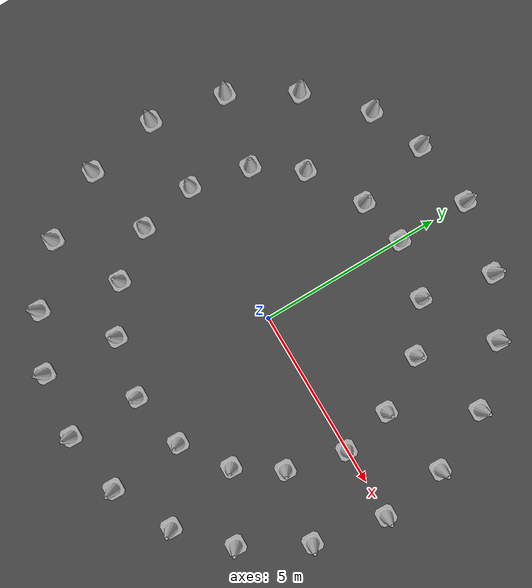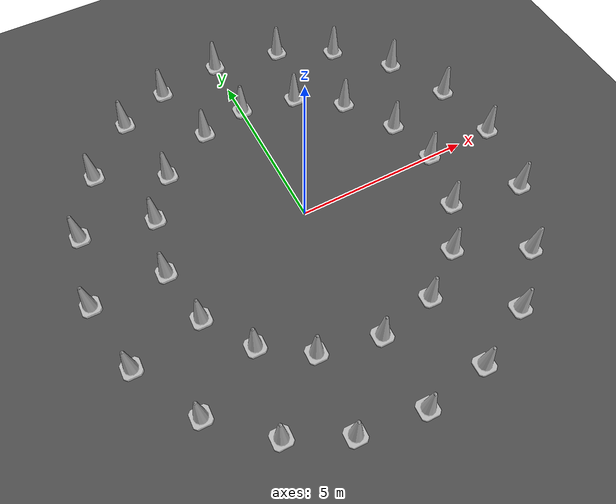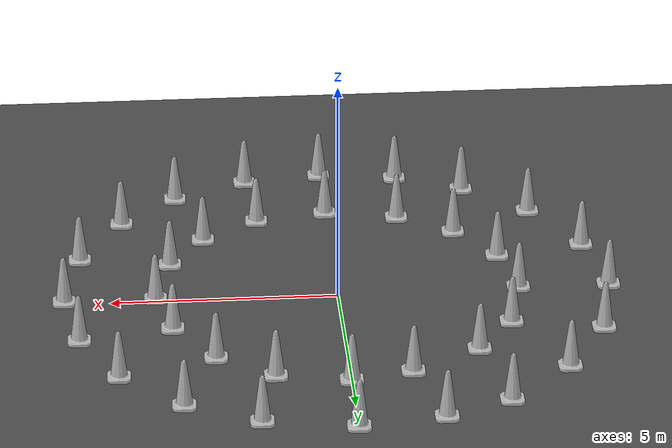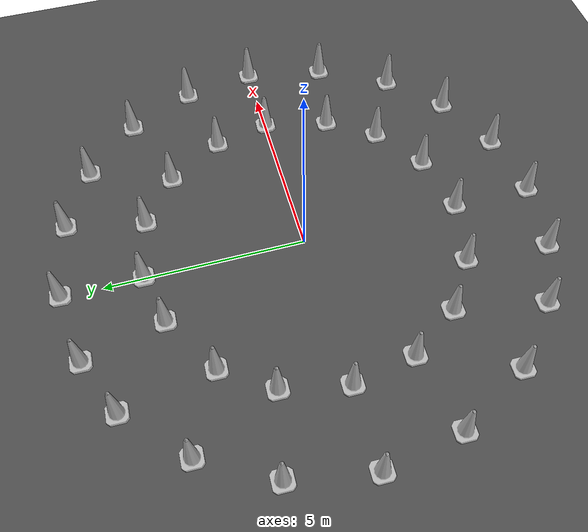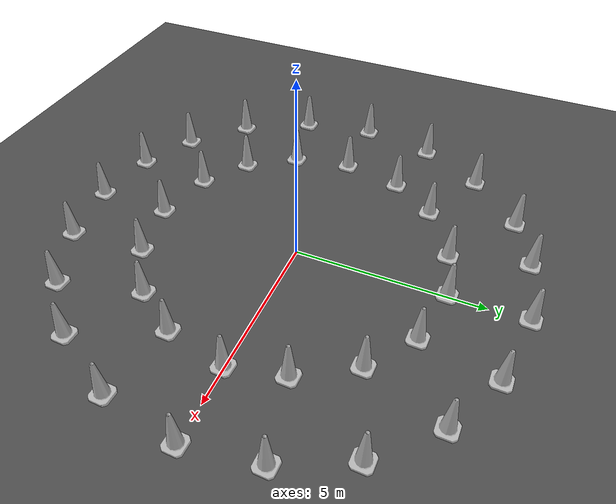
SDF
<sdf version="1.7">
 <world name="default">
  <light name="sun" type="directional">
   <pose>0 0 10 0 -0 0</pose>
   <diffuse>0.8 0.8 0.8 1</diffuse>
   <specular>0.2 0.2 0.2 1</specular>
   <attenuation>
    <range>1000</range>
    <constant>0.9</constant>
    <linear>0.01</linear>
    <quadratic>0.001</quadratic>
   </attenuation>
   <direction>-0.5 0.1 -0.9</direction>
   <spot><inner_angle>0</inner_angle><outer_angle>0</outer_angle><falloff>0</falloff></spot>
  </light>
  <model name="ground_plane">
   <static>1</static>
   <link name="link">
    <collision name="collision">
     <geometry><plane><normal>0 0 1</normal><size>100 100</size></plane></geometry>
     <surface><friction><ode><mu>100</mu><mu2>50</mu2></ode></friction></surface>
    </collision>
    <visual name="visual">
     <cast_shadows>0</cast_shadows>
     <geometry><plane><normal>0 0 1</normal><size>100 100</size></plane></geometry>
     <material>
      <script><uri>file://media/materials/scripts/gazebo.material</uri><name>Gazebo/Grey</name></script>
     </material>
    </visual>
    <velocity_decay><linear>0</linear><angular>0</angular></velocity_decay>
   </link>
  </model>
  <physics type="ode">
   <max_step_size>0.01</max_step_size>
   <real_time_factor>1</real_time_factor>
   <real_time_update_rate>100</real_time_update_rate>
  </physics>
  <scene><ambient>0.4 0.4 0.4 1</ambient><background>0.7 0.7 0.7 1</background><shadows>1</shadows></scene>
  <model name="Construction Cone">
   <link name="link">
    <collision name="collision">
     <geometry>
      <mesh><scale>10 10 10</scale><uri>model://construction_cone/meshes/construction_cone.dae</uri></mesh>
     </geometry>
    </collision>
    <visual name="visual">
     <geometry>
      <mesh><scale>10 10 10</scale><uri>model://construction_cone/meshes/construction_cone.dae</uri></mesh>
     </geometry>
    </visual>
    <velocity_decay><linear>0</linear><angular>0</angular></velocity_decay>
    <inertial>
     <inertia><ixx>1</ixx><ixy>0</ixy><ixz>0</ixz><iyy>1</iyy><iyz>0</iyz><izz>1</izz></inertia>
     <mass>1</mass>
    </inertial>
   </link>
   <pose>0.011489 -6.00634 0.05 0 -0 -0.029351</pose>
   <static>0</static>
  </model>
  <model name="Construction Cone_0">
   <link name="link">
    <collision name="collision">
     <geometry>
      <mesh><scale>10 10 10</scale><uri>model://construction_cone/meshes/construction_cone.dae</uri></mesh>
     </geometry>
    </collision>
    <visual name="visual">
     <geometry>
      <mesh><scale>10 10 10</scale><uri>model://construction_cone/meshes/construction_cone.dae</uri></mesh>
     </geometry>
    </visual>
    <velocity_decay><linear>0</linear><angular>0</angular></velocity_decay>
    <inertial>
     <inertia><ixx>1</ixx><ixy>0</ixy><ixz>0</ixz><iyy>1</iyy><iyz>0</iyz><izz>1</izz></inertia>
     <mass>1</mass>
    </inertial>
   </link>
   <pose>0.010199 5.9935 0.05 0 -0 -0.049854</pose>
   <static>0</static>
  </model>
  <model name="Construction Cone_1">
   <link name="link">
    <collision name="collision">
     <geometry>
      <mesh><scale>10 10 10</scale><uri>model://construction_cone/meshes/construction_cone.dae</uri></mesh>
     </geometry>
    </collision>
    <visual name="visual">
     <geometry>
      <mesh><scale>10 10 10</scale><uri>model://construction_cone/meshes/construction_cone.dae</uri></mesh>
     </geometry>
    </visual>
    <velocity_decay><linear>0</linear><angular>0</angular></velocity_decay>
    <inertial>
     <inertia><ixx>1</ixx><ixy>0</ixy><ixz>0</ixz><iyy>1</iyy><iyz>0</iyz><izz>1</izz></inertia>
     <mass>1</mass>
    </inertial>
   </link>
   <pose>0.011489 -4.00634 0.05 0 -0 -0.029351</pose>
   <static>0</static>
  </model>
  <gravity>0 0 -9.8</gravity>
  <magnetic_field>6e-06 2.3e-05 -4.2e-05</magnetic_field>
  <atmosphere type="adiabatic"/>
  <spherical_coordinates>
   <surface_model>EARTH_WGS84</surface_model>
   <latitude_deg>0</latitude_deg>
   <longitude_deg>0</longitude_deg>
   <elevation>0</elevation>
   <heading_deg>0</heading_deg>
  </spherical_coordinates>
  <model name="Construction Cone_0_clone">
   <link name="link">
    <collision name="collision">
     <geometry>
      <mesh><scale>10 10 10</scale><uri>model://construction_cone/meshes/construction_cone.dae</uri></mesh>
     </geometry>
    </collision>
    <visual name="visual">
     <geometry>
      <mesh><scale>10 10 10</scale><uri>model://construction_cone/meshes/construction_cone.dae</uri></mesh>
     </geometry>
    </visual>
    <velocity_decay><linear>0</linear><angular>0</angular></velocity_decay>
    <inertial>
     <inertia><ixx>1</ixx><ixy>0</ixy><ixz>0</ixz><iyy>1</iyy><iyz>0</iyz><izz>1</izz></inertia>
     <mass>1</mass>
    </inertial>
   </link>
   <pose>0.009254 4.00336 0.05 0 -0 -0.022775</pose>
   <static>0</static>
  </model>
  <model name="Construction Cone_0_clone_0">
   <link name="link">
    <collision name="collision">
     <geometry>
      <mesh><scale>10 10 10</scale><uri>model://construction_cone/meshes/construction_cone.dae</uri></mesh>
     </geometry>
    </collision>
    <visual name="visual">
     <geometry>
      <mesh><scale>10 10 10</scale><uri>model://construction_cone/meshes/construction_cone.dae</uri></mesh>
     </geometry>
    </visual>
    <velocity_decay><linear>0</linear><angular>0</angular></velocity_decay>
    <inertial>
     <inertia><ixx>1</ixx><ixy>0</ixy><ixz>0</ixz><iyy>1</iyy><iyz>0</iyz><izz>1</izz></inertia>
     <mass>1</mass>
    </inertial>
   </link>
   <pose>4.0102 -0.006499 0.05 0 -0 -0.049854</pose>
   <static>0</static>
  </model>
  <model name="Construction Cone_0_clone_1">
   <link name="link">
    <collision name="collision">
     <geometry>
      <mesh><scale>10 10 10</scale><uri>model://construction_cone/meshes/construction_cone.dae</uri></mesh>
     </geometry>
    </collision>
    <visual name="visual">
     <geometry>
      <mesh><scale>10 10 10</scale><uri>model://construction_cone/meshes/construction_cone.dae</uri></mesh>
     </geometry>
    </visual>
    <velocity_decay><linear>0</linear><angular>0</angular></velocity_decay>
    <inertial>
     <inertia><ixx>1</ixx><ixy>0</ixy><ixz>0</ixz><iyy>1</iyy><iyz>0</iyz><izz>1</izz></inertia>
     <mass>1</mass>
    </inertial>
   </link>
   <pose>6.00925 0.003362 0.05 0 -0 -0.022775</pose>
   <static>0</static>
  </model>
  <model name="Construction Cone_0_clone_2">
   <link name="link">
    <collision name="collision">
     <geometry>
      <mesh><scale>10 10 10</scale><uri>model://construction_cone/meshes/construction_cone.dae</uri></mesh>
     </geometry>
    </collision>
    <visual name="visual">
     <geometry>
      <mesh><scale>10 10 10</scale><uri>model://construction_cone/meshes/construction_cone.dae</uri></mesh>
     </geometry>
    </visual>
    <velocity_decay><linear>0</linear><angular>0</angular></velocity_decay>
    <inertial>
     <inertia><ixx>1</ixx><ixy>0</ixy><ixz>0</ixz><iyy>1</iyy><iyz>0</iyz><izz>1</izz></inertia>
     <mass>1</mass>
    </inertial>
   </link>
   <pose>-3.99075 0.003362 0.05 0 -0 -0.022775</pose>
   <static>0</static>
  </model>
  <model name="Construction Cone_0_clone_3">
   <link name="link">
    <collision name="collision">
     <geometry>
      <mesh><scale>10 10 10</scale><uri>model://construction_cone/meshes/construction_cone.dae</uri></mesh>
     </geometry>
    </collision>
    <visual name="visual">
     <geometry>
      <mesh><scale>10 10 10</scale><uri>model://construction_cone/meshes/construction_cone.dae</uri></mesh>
     </geometry>
    </visual>
    <velocity_decay><linear>0</linear><angular>0</angular></velocity_decay>
    <inertial>
     <inertia><ixx>1</ixx><ixy>0</ixy><ixz>0</ixz><iyy>1</iyy><iyz>0</iyz><izz>1</izz></inertia>
     <mass>1</mass>
    </inertial>
   </link>
   <pose>-5.99075 0.003362 0.05 0 -0 -0.022775</pose>
   <static>0</static>
  </model>
  <model name="Construction Cone_0_clone_clone">
   <link name="link">
    <collision name="collision">
     <geometry>
      <mesh><scale>10 10 10</scale><uri>model://construction_cone/meshes/construction_cone.dae</uri></mesh>
     </geometry>
    </collision>
    <visual name="visual">
     <geometry>
      <mesh><scale>10 10 10</scale><uri>model://construction_cone/meshes/construction_cone.dae</uri></mesh>
     </geometry>
    </visual>
    <velocity_decay><linear>0</linear><angular>0</angular></velocity_decay>
    <inertial>
     <inertia><ixx>1</ixx><ixy>0</ixy><ixz>0</ixz><iyy>1</iyy><iyz>0</iyz><izz>1</izz></inertia>
     <mass>1</mass>
    </inertial>
   </link>
   <pose>-1.32086 3.71081 0.04996 -3e-06 0.000177 -0.029761</pose>
   <static>0</static>
  </model>
  <model name="Construction Cone_0_clone_0_clone">
   <link name="link">
    <collision name="collision">
     <geometry>
      <mesh><scale>10 10 10</scale><uri>model://construction_cone/meshes/construction_cone.dae</uri></mesh>
     </geometry>
    </collision>
    <visual name="visual">
     <geometry>
      <mesh><scale>10 10 10</scale><uri>model://construction_cone/meshes/construction_cone.dae</uri></mesh>
     </geometry>
    </visual>
    <velocity_decay><linear>0</linear><angular>0</angular></velocity_decay>
    <inertial>
     <inertia><ixx>1</ixx><ixy>0</ixy><ixz>0</ixz><iyy>1</iyy><iyz>0</iyz><izz>1</izz></inertia>
     <mass>1</mass>
    </inertial>
   </link>
   <pose>1.59543 -3.69529 0.04996 -3e-06 0.000177 -0.029752</pose>
   <static>0</static>
  </model>
  <model name="Construction Cone_0_clone_0_clone_0">
   <link name="link">
    <collision name="collision">
     <geometry>
      <mesh><scale>10 10 10</scale><uri>model://construction_cone/meshes/construction_cone.dae</uri></mesh>
     </geometry>
    </collision>
    <visual name="visual">
     <geometry>
      <mesh><scale>10 10 10</scale><uri>model://construction_cone/meshes/construction_cone.dae</uri></mesh>
     </geometry>
    </visual>
    <velocity_decay><linear>0</linear><angular>0</angular></velocity_decay>
    <inertial>
     <inertia><ixx>1</ixx><ixy>0</ixy><ixz>0</ixz><iyy>1</iyy><iyz>0</iyz><izz>1</izz></inertia>
     <mass>1</mass>
    </inertial>
   </link>
   <pose>2.85107 -2.82602 0.04996 -3e-06 0.000177 -0.029752</pose>
   <static>0</static>
  </model>
  <model name="Construction Cone_0_clone_0_clone_1">
   <link name="link">
    <collision name="collision">
     <geometry>
      <mesh><scale>10 10 10</scale><uri>model://construction_cone/meshes/construction_cone.dae</uri></mesh>
     </geometry>
    </collision>
    <visual name="visual">
     <geometry>
      <mesh><scale>10 10 10</scale><uri>model://construction_cone/meshes/construction_cone.dae</uri></mesh>
     </geometry>
    </visual>
    <velocity_decay><linear>0</linear><angular>0</angular></velocity_decay>
    <inertial>
     <inertia><ixx>1</ixx><ixy>0</ixy><ixz>0</ixz><iyy>1</iyy><iyz>0</iyz><izz>1</izz></inertia>
     <mass>1</mass>
    </inertial>
   </link>
   <pose>3.63603 -1.6452 0.04996 -3e-06 0.000177 -0.029752</pose>
   <static>0</static>
  </model>
  <model name="Construction Cone_0_clone_0_clone_clone">
   <link name="link">
    <collision name="collision">
     <geometry>
      <mesh><scale>10 10 10</scale><uri>model://construction_cone/meshes/construction_cone.dae</uri></mesh>
     </geometry>
    </collision>
    <visual name="visual">
     <geometry>
      <mesh><scale>10 10 10</scale><uri>model://construction_cone/meshes/construction_cone.dae</uri></mesh>
     </geometry>
    </visual>
    <velocity_decay><linear>0</linear><angular>0</angular></velocity_decay>
    <inertial>
     <inertia><ixx>1</ixx><ixy>0</ixy><ixz>0</ixz><iyy>1</iyy><iyz>0</iyz><izz>1</izz></inertia>
     <mass>1</mass>
    </inertial>
   </link>
   <pose>-1.61123 -3.65752 0.04996 -3e-06 0.000177 -0.029752</pose>
   <static>0</static>
  </model>
  <model name="Construction Cone_0_clone_0_clone_clone_0">
   <link name="link">
    <collision name="collision">
     <geometry>
      <mesh><scale>10 10 10</scale><uri>model://construction_cone/meshes/construction_cone.dae</uri></mesh>
     </geometry>
    </collision>
    <visual name="visual">
     <geometry>
      <mesh><scale>10 10 10</scale><uri>model://construction_cone/meshes/construction_cone.dae</uri></mesh>
     </geometry>
    </visual>
    <velocity_decay><linear>0</linear><angular>0</angular></velocity_decay>
    <inertial>
     <inertia><ixx>1</ixx><ixy>0</ixy><ixz>0</ixz><iyy>1</iyy><iyz>0</iyz><izz>1</izz></inertia>
     <mass>1</mass>
    </inertial>
   </link>
   <pose>-2.8285 -2.83035 0.04996 -3e-06 0.000177 -0.029752</pose>
   <static>0</static>
  </model>
  <model name="Construction Cone_0_clone_0_clone_clone_1">
   <link name="link">
    <collision name="collision">
     <geometry>
      <mesh><scale>10 10 10</scale><uri>model://construction_cone/meshes/construction_cone.dae</uri></mesh>
     </geometry>
    </collision>
    <visual name="visual">
     <geometry>
      <mesh><scale>10 10 10</scale><uri>model://construction_cone/meshes/construction_cone.dae</uri></mesh>
     </geometry>
    </visual>
    <velocity_decay><linear>0</linear><angular>0</angular></velocity_decay>
    <inertial>
     <inertia><ixx>1</ixx><ixy>0</ixy><ixz>0</ixz><iyy>1</iyy><iyz>0</iyz><izz>1</izz></inertia>
     <mass>1</mass>
    </inertial>
   </link>
   <pose>-3.69287 -1.56973 0.04996 -3e-06 0.000177 -0.029752</pose>
   <static>0</static>
  </model>
  <model name="Construction Cone_0_clone_0_clone_clone_2">
   <link name="link">
    <collision name="collision">
     <geometry>
      <mesh><scale>10 10 10</scale><uri>model://construction_cone/meshes/construction_cone.dae</uri></mesh>
     </geometry>
    </collision>
    <visual name="visual">
     <geometry>
      <mesh><scale>10 10 10</scale><uri>model://construction_cone/meshes/construction_cone.dae</uri></mesh>
     </geometry>
    </visual>
    <velocity_decay><linear>0</linear><angular>0</angular></velocity_decay>
    <inertial>
     <inertia><ixx>1</ixx><ixy>0</ixy><ixz>0</ixz><iyy>1</iyy><iyz>0</iyz><izz>1</izz></inertia>
     <mass>1</mass>
    </inertial>
   </link>
   <pose>3.68004 1.41114 0.04996 -3e-06 0.000177 -0.029752</pose>
   <static>0</static>
  </model>
  <model name="Construction Cone_0_clone_0_clone_clone_3">
   <link name="link">
    <collision name="collision">
     <geometry>
      <mesh><scale>10 10 10</scale><uri>model://construction_cone/meshes/construction_cone.dae</uri></mesh>
     </geometry>
    </collision>
    <visual name="visual">
     <geometry>
      <mesh><scale>10 10 10</scale><uri>model://construction_cone/meshes/construction_cone.dae</uri></mesh>
     </geometry>
    </visual>
    <velocity_decay><linear>0</linear><angular>0</angular></velocity_decay>
    <inertial>
     <inertia><ixx>1</ixx><ixy>0</ixy><ixz>0</ixz><iyy>1</iyy><iyz>0</iyz><izz>1</izz></inertia>
     <mass>1</mass>
    </inertial>
   </link>
   <pose>2.81108 2.81547 0.04996 -3e-06 0.000177 -0.029752</pose>
   <static>0</static>
  </model>
  <model name="Construction Cone_0_clone_0_clone_clone_4">
   <link name="link">
    <collision name="collision">
     <geometry>
      <mesh><scale>10 10 10</scale><uri>model://construction_cone/meshes/construction_cone.dae</uri></mesh>
     </geometry>
    </collision>
    <visual name="visual">
     <geometry>
      <mesh><scale>10 10 10</scale><uri>model://construction_cone/meshes/construction_cone.dae</uri></mesh>
     </geometry>
    </visual>
    <velocity_decay><linear>0</linear><angular>0</angular></velocity_decay>
    <inertial>
     <inertia><ixx>1</ixx><ixy>0</ixy><ixz>0</ixz><iyy>1</iyy><iyz>0</iyz><izz>1</izz></inertia>
     <mass>1</mass>
    </inertial>
   </link>
   <pose>1.58977 3.70091 0.04996 -3e-06 0.000177 -0.029752</pose>
   <static>0</static>
  </model>
  <model name="Construction Cone_0_clone_0_clone_clone_5">
   <link name="link">
    <collision name="collision">
     <geometry>
      <mesh><scale>10 10 10</scale><uri>model://construction_cone/meshes/construction_cone.dae</uri></mesh>
     </geometry>
    </collision>
    <visual name="visual">
     <geometry>
      <mesh><scale>10 10 10</scale><uri>model://construction_cone/meshes/construction_cone.dae</uri></mesh>
     </geometry>
    </visual>
    <velocity_decay><linear>0</linear><angular>0</angular></velocity_decay>
    <inertial>
     <inertia><ixx>1</ixx><ixy>0</ixy><ixz>0</ixz><iyy>1</iyy><iyz>0</iyz><izz>1</izz></inertia>
     <mass>1</mass>
    </inertial>
   </link>
   <pose>-2.82441 2.82035 0.04996 -3e-06 0.000177 -0.029752</pose>
   <static>0</static>
  </model>
  <model name="Construction Cone_0_clone_0_clone_clone_6">
   <link name="link">
    <collision name="collision">
     <geometry>
      <mesh><scale>10 10 10</scale><uri>model://construction_cone/meshes/construction_cone.dae</uri></mesh>
     </geometry>
    </collision>
    <visual name="visual">
     <geometry>
      <mesh><scale>10 10 10</scale><uri>model://construction_cone/meshes/construction_cone.dae</uri></mesh>
     </geometry>
    </visual>
    <velocity_decay><linear>0</linear><angular>0</angular></velocity_decay>
    <inertial>
     <inertia><ixx>1</ixx><ixy>0</ixy><ixz>0</ixz><iyy>1</iyy><iyz>0</iyz><izz>1</izz></inertia>
     <mass>1</mass>
    </inertial>
   </link>
   <pose>-3.65071 1.62696 0.04996 -3e-06 0.000177 -0.029752</pose>
   <static>0</static>
  </model>
  <model name="Construction Cone_clone">
   <link name="link">
    <collision name="collision">
     <geometry>
      <mesh><scale>10 10 10</scale><uri>model://construction_cone/meshes/construction_cone.dae</uri></mesh>
     </geometry>
    </collision>
    <visual name="visual">
     <geometry>
      <mesh><scale>10 10 10</scale><uri>model://construction_cone/meshes/construction_cone.dae</uri></mesh>
     </geometry>
    </visual>
    <velocity_decay><linear>0</linear><angular>0</angular></velocity_decay>
    <inertial>
     <inertia><ixx>1</ixx><ixy>0</ixy><ixz>0</ixz><iyy>1</iyy><iyz>0</iyz><izz>1</izz></inertia>
     <mass>1</mass>
    </inertial>
   </link>
   <pose>1.76288 -5.75564 0.050003 1.3e-05 1e-06 -0.028992</pose>
   <static>0</static>
  </model>
  <model name="Construction Cone_clone_0">
   <link name="link">
    <collision name="collision">
     <geometry>
      <mesh><scale>10 10 10</scale><uri>model://construction_cone/meshes/construction_cone.dae</uri></mesh>
     </geometry>
    </collision>
    <visual name="visual">
     <geometry>
      <mesh><scale>10 10 10</scale><uri>model://construction_cone/meshes/construction_cone.dae</uri></mesh>
     </geometry>
    </visual>
    <velocity_decay><linear>0</linear><angular>0</angular></velocity_decay>
    <inertial>
     <inertia><ixx>1</ixx><ixy>0</ixy><ixz>0</ixz><iyy>1</iyy><iyz>0</iyz><izz>1</izz></inertia>
     <mass>1</mass>
    </inertial>
   </link>
   <pose>3.40811 -4.98165 0.050003 1.3e-05 1e-06 -0.028992</pose>
   <static>0</static>
  </model>
  <model name="Construction Cone_clone_1">
   <link name="link">
    <collision name="collision">
     <geometry>
      <mesh><scale>10 10 10</scale><uri>model://construction_cone/meshes/construction_cone.dae</uri></mesh>
     </geometry>
    </collision>
    <visual name="visual">
     <geometry>
      <mesh><scale>10 10 10</scale><uri>model://construction_cone/meshes/construction_cone.dae</uri></mesh>
     </geometry>
    </visual>
    <velocity_decay><linear>0</linear><angular>0</angular></velocity_decay>
    <inertial>
     <inertia><ixx>1</ixx><ixy>0</ixy><ixz>0</ixz><iyy>1</iyy><iyz>0</iyz><izz>1</izz></inertia>
     <mass>1</mass>
    </inertial>
   </link>
   <pose>4.66934 -3.76976 0.050003 1.3e-05 1e-06 -0.028992</pose>
   <static>0</static>
  </model>
  <model name="Construction Cone_clone_2">
   <link name="link">
    <collision name="collision">
     <geometry>
      <mesh><scale>10 10 10</scale><uri>model://construction_cone/meshes/construction_cone.dae</uri></mesh>
     </geometry>
    </collision>
    <visual name="visual">
     <geometry>
      <mesh><scale>10 10 10</scale><uri>model://construction_cone/meshes/construction_cone.dae</uri></mesh>
     </geometry>
    </visual>
    <velocity_decay><linear>0</linear><angular>0</angular></velocity_decay>
    <inertial>
     <inertia><ixx>1</ixx><ixy>0</ixy><ixz>0</ixz><iyy>1</iyy><iyz>0</iyz><izz>1</izz></inertia>
     <mass>1</mass>
    </inertial>
   </link>
   <pose>5.63845 -2.00887 0.050003 1.3e-05 1e-06 -0.028992</pose>
   <static>0</static>
  </model>
  <model name="Construction Cone_clone_3">
   <link name="link">
    <collision name="collision">
     <geometry>
      <mesh><scale>10 10 10</scale><uri>model://construction_cone/meshes/construction_cone.dae</uri></mesh>
     </geometry>
    </collision>
    <visual name="visual">
     <geometry>
      <mesh><scale>10 10 10</scale><uri>model://construction_cone/meshes/construction_cone.dae</uri></mesh>
     </geometry>
    </visual>
    <velocity_decay><linear>0</linear><angular>0</angular></velocity_decay>
    <inertial>
     <inertia><ixx>1</ixx><ixy>0</ixy><ixz>0</ixz><iyy>1</iyy><iyz>0</iyz><izz>1</izz></inertia>
     <mass>1</mass>
    </inertial>
   </link>
   <pose>-1.74607 -5.75561 0.050003 1.3e-05 1e-06 -0.028992</pose>
   <static>0</static>
  </model>
  <model name="Construction Cone_clone_4">
   <link name="link">
    <collision name="collision">
     <geometry>
      <mesh><scale>10 10 10</scale><uri>model://construction_cone/meshes/construction_cone.dae</uri></mesh>
     </geometry>
    </collision>
    <visual name="visual">
     <geometry>
      <mesh><scale>10 10 10</scale><uri>model://construction_cone/meshes/construction_cone.dae</uri></mesh>
     </geometry>
    </visual>
    <velocity_decay><linear>0</linear><angular>0</angular></velocity_decay>
    <inertial>
     <inertia><ixx>1</ixx><ixy>0</ixy><ixz>0</ixz><iyy>1</iyy><iyz>0</iyz><izz>1</izz></inertia>
     <mass>1</mass>
    </inertial>
   </link>
   <pose>-3.24109 -5.0394 0.050003 1.3e-05 1e-06 -0.028992</pose>
   <static>0</static>
  </model>
  <model name="Construction Cone_clone_5">
   <link name="link">
    <collision name="collision">
     <geometry>
      <mesh><scale>10 10 10</scale><uri>model://construction_cone/meshes/construction_cone.dae</uri></mesh>
     </geometry>
    </collision>
    <visual name="visual">
     <geometry>
      <mesh><scale>10 10 10</scale><uri>model://construction_cone/meshes/construction_cone.dae</uri></mesh>
     </geometry>
    </visual>
    <velocity_decay><linear>0</linear><angular>0</angular></velocity_decay>
    <inertial>
     <inertia><ixx>1</ixx><ixy>0</ixy><ixz>0</ixz><iyy>1</iyy><iyz>0</iyz><izz>1</izz></inertia>
     <mass>1</mass>
    </inertial>
   </link>
   <pose>-4.64211 -3.7752 0.050003 1.3e-05 1e-06 -0.028992</pose>
   <static>0</static>
  </model>
  <model name="Construction Cone_clone_6">
   <link name="link">
    <collision name="collision">
     <geometry>
      <mesh><scale>10 10 10</scale><uri>model://construction_cone/meshes/construction_cone.dae</uri></mesh>
     </geometry>
    </collision>
    <visual name="visual">
     <geometry>
      <mesh><scale>10 10 10</scale><uri>model://construction_cone/meshes/construction_cone.dae</uri></mesh>
     </geometry>
    </visual>
    <velocity_decay><linear>0</linear><angular>0</angular></velocity_decay>
    <inertial>
     <inertia><ixx>1</ixx><ixy>0</ixy><ixz>0</ixz><iyy>1</iyy><iyz>0</iyz><izz>1</izz></inertia>
     <mass>1</mass>
    </inertial>
   </link>
   <pose>-5.64257 -1.96865 0.050003 1.3e-05 1e-06 -0.028992</pose>
   <static>0</static>
  </model>
  <model name="Construction Cone_0_clone_3_clone">
   <link name="link">
    <collision name="collision">
     <geometry>
      <mesh><scale>10 10 10</scale><uri>model://construction_cone/meshes/construction_cone.dae</uri></mesh>
     </geometry>
    </collision>
    <visual name="visual">
     <geometry>
      <mesh><scale>10 10 10</scale><uri>model://construction_cone/meshes/construction_cone.dae</uri></mesh>
     </geometry>
    </visual>
    <velocity_decay><linear>0</linear><angular>0</angular></velocity_decay>
    <inertial>
     <inertia><ixx>1</ixx><ixy>0</ixy><ixz>0</ixz><iyy>1</iyy><iyz>0</iyz><izz>1</izz></inertia>
     <mass>1</mass>
    </inertial>
   </link>
   <pose>-5.61788 2.02748 0.05 0 -0 -0.022775</pose>
   <static>0</static>
  </model>
  <model name="Construction Cone_0_clone_3_clone_0">
   <link name="link">
    <collision name="collision">
     <geometry>
      <mesh><scale>10 10 10</scale><uri>model://construction_cone/meshes/construction_cone.dae</uri></mesh>
     </geometry>
    </collision>
    <visual name="visual">
     <geometry>
      <mesh><scale>10 10 10</scale><uri>model://construction_cone/meshes/construction_cone.dae</uri></mesh>
     </geometry>
    </visual>
    <velocity_decay><linear>0</linear><angular>0</angular></velocity_decay>
    <inertial>
     <inertia><ixx>1</ixx><ixy>0</ixy><ixz>0</ixz><iyy>1</iyy><iyz>0</iyz><izz>1</izz></inertia>
     <mass>1</mass>
    </inertial>
   </link>
   <pose>-4.65905 3.7266 0.05 0 -0 -0.022775</pose>
   <static>0</static>
  </model>
  <model name="Construction Cone_0_clone_3_clone_1">
   <link name="link">
    <collision name="collision">
     <geometry>
      <mesh><scale>10 10 10</scale><uri>model://construction_cone/meshes/construction_cone.dae</uri></mesh>
     </geometry>
    </collision>
    <visual name="visual">
     <geometry>
      <mesh><scale>10 10 10</scale><uri>model://construction_cone/meshes/construction_cone.dae</uri></mesh>
     </geometry>
    </visual>
    <velocity_decay><linear>0</linear><angular>0</angular></velocity_decay>
    <inertial>
     <inertia><ixx>1</ixx><ixy>0</ixy><ixz>0</ixz><iyy>1</iyy><iyz>0</iyz><izz>1</izz></inertia>
     <mass>1</mass>
    </inertial>
   </link>
   <pose>-3.26098 5.09571 0.05 0 -0 -0.022775</pose>
   <static>0</static>
  </model>
  <model name="Construction Cone_0_clone_3_clone_2">
   <link name="link">
    <collision name="collision">
     <geometry>
      <mesh><scale>10 10 10</scale><uri>model://construction_cone/meshes/construction_cone.dae</uri></mesh>
     </geometry>
    </collision>
    <visual name="visual">
     <geometry>
      <mesh><scale>10 10 10</scale><uri>model://construction_cone/meshes/construction_cone.dae</uri></mesh>
     </geometry>
    </visual>
    <velocity_decay><linear>0</linear><angular>0</angular></velocity_decay>
    <inertial>
     <inertia><ixx>1</ixx><ixy>0</ixy><ixz>0</ixz><iyy>1</iyy><iyz>0</iyz><izz>1</izz></inertia>
     <mass>1</mass>
    </inertial>
   </link>
   <pose>-1.83247 5.71708 0.05 0 -0 -0.022775</pose>
   <static>0</static>
  </model>
  <model name="Construction Cone_0_clone_3_clone_3">
   <link name="link">
    <collision name="collision">
     <geometry>
      <mesh><scale>10 10 10</scale><uri>model://construction_cone/meshes/construction_cone.dae</uri></mesh>
     </geometry>
    </collision>
    <visual name="visual">
     <geometry>
      <mesh><scale>10 10 10</scale><uri>model://construction_cone/meshes/construction_cone.dae</uri></mesh>
     </geometry>
    </visual>
    <velocity_decay><linear>0</linear><angular>0</angular></velocity_decay>
    <inertial>
     <inertia><ixx>1</ixx><ixy>0</ixy><ixz>0</ixz><iyy>1</iyy><iyz>0</iyz><izz>1</izz></inertia>
     <mass>1</mass>
    </inertial>
   </link>
   <pose>1.9877 5.65757 0.05 0 -0 -0.022775</pose>
   <static>0</static>
  </model>
  <model name="Construction Cone_0_clone_3_clone_4">
   <link name="link">
    <collision name="collision">
     <geometry>
      <mesh><scale>10 10 10</scale><uri>model://construction_cone/meshes/construction_cone.dae</uri></mesh>
     </geometry>
    </collision>
    <visual name="visual">
     <geometry>
      <mesh><scale>10 10 10</scale><uri>model://construction_cone/meshes/construction_cone.dae</uri></mesh>
     </geometry>
    </visual>
    <velocity_decay><linear>0</linear><angular>0</angular></velocity_decay>
    <inertial>
     <inertia><ixx>1</ixx><ixy>0</ixy><ixz>0</ixz><iyy>1</iyy><iyz>0</iyz><izz>1</izz></inertia>
     <mass>1</mass>
    </inertial>
   </link>
   <pose>3.56519 4.85752 0.05 0 -0 -0.022775</pose>
   <static>0</static>
  </model>
  <model name="Construction Cone_0_clone_3_clone_5">
   <link name="link">
    <collision name="collision">
     <geometry>
      <mesh><scale>10 10 10</scale><uri>model://construction_cone/meshes/construction_cone.dae</uri></mesh>
     </geometry>
    </collision>
    <visual name="visual">
     <geometry>
      <mesh><scale>10 10 10</scale><uri>model://construction_cone/meshes/construction_cone.dae</uri></mesh>
     </geometry>
    </visual>
    <velocity_decay><linear>0</linear><angular>0</angular></velocity_decay>
    <inertial>
     <inertia><ixx>1</ixx><ixy>0</ixy><ixz>0</ixz><iyy>1</iyy><iyz>0</iyz><izz>1</izz></inertia>
     <mass>1</mass>
    </inertial>
   </link>
   <pose>4.88829 3.52544 0.05 0 -0 -0.022775</pose>
   <static>0</static>
  </model>
  <model name="Construction Cone_0_clone_3_clone_6">
   <link name="link">
    <collision name="collision">
     <geometry>
      <mesh><scale>10 10 10</scale><uri>model://construction_cone/meshes/construction_cone.dae</uri></mesh>
     </geometry>
    </collision>
    <visual name="visual">
     <geometry>
      <mesh><scale>10 10 10</scale><uri>model://construction_cone/meshes/construction_cone.dae</uri></mesh>
     </geometry>
    </visual>
    <velocity_decay><linear>0</linear><angular>0</angular></velocity_decay>
    <inertial>
     <inertia><ixx>1</ixx><ixy>0</ixy><ixz>0</ixz><iyy>1</iyy><iyz>0</iyz><izz>1</izz></inertia>
     <mass>1</mass>
    </inertial>
   </link>
   <pose>5.70107 1.83625 0.05 0 -0 -0.022775</pose>
   <static>0</static>
  </model>
  <model name="big_asphalt_plane">
   <static>1</static>
   <link name="link">
    <collision name="collision"><geometry><box><size>50 50 0.1</size></box></geometry></collision>
    <visual name="visual">
     <cast_shadows>0</cast_shadows>
     <geometry><box><size>50 50 0.1</size></box></geometry>
     <material>
      <script>
       <uri>model://big_asphalt_plane/materials/scripts</uri>
       <uri>model://big_asphalt_plane/materials/textures</uri>
       <name>vrc/asphalt</name>
      </script>
     </material>
    </visual>
   </link>
   <pose>-3.11131 2.07361 0 0 -0 0</pose>
  </model>
 </world>
</sdf>
